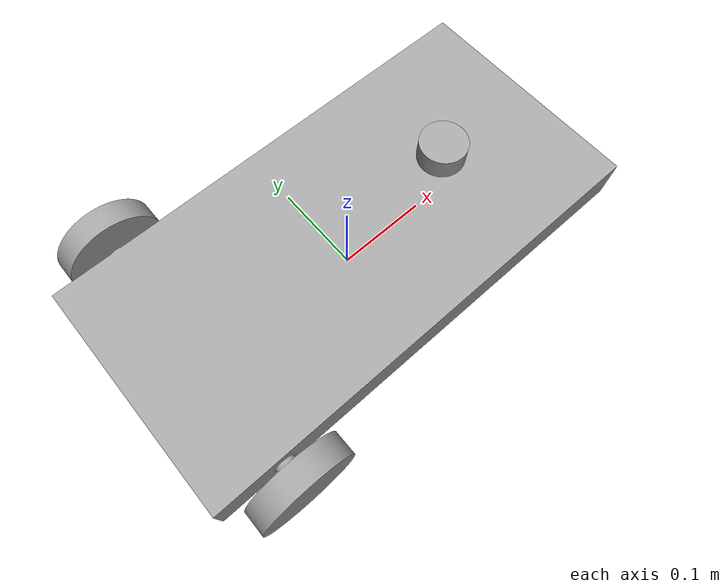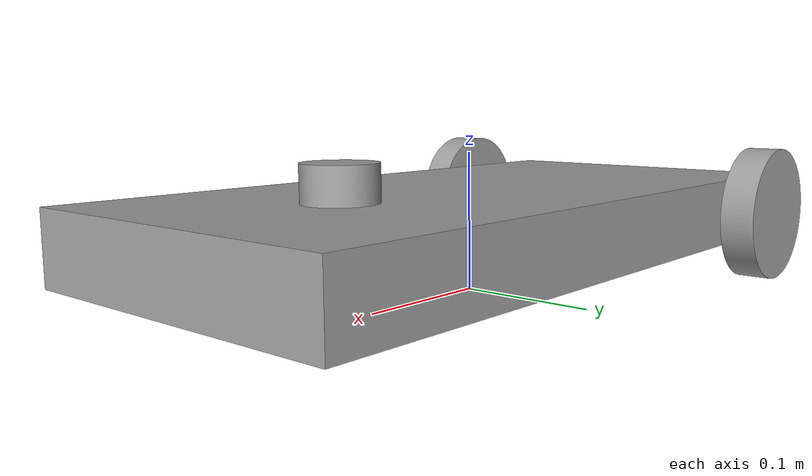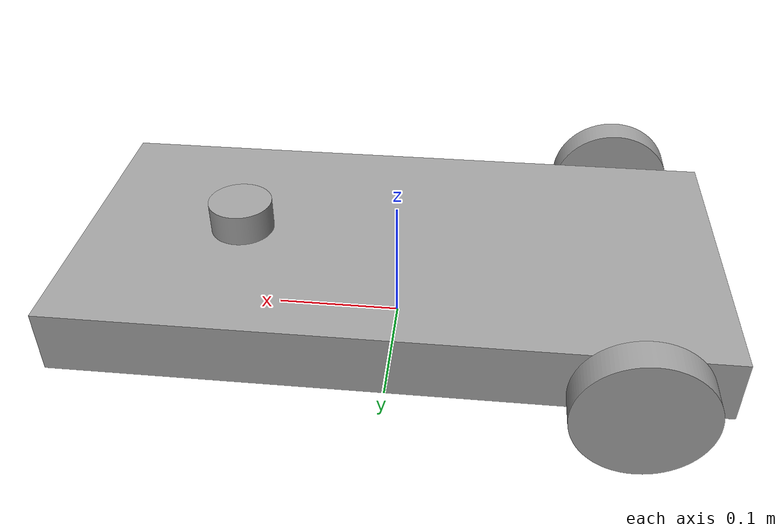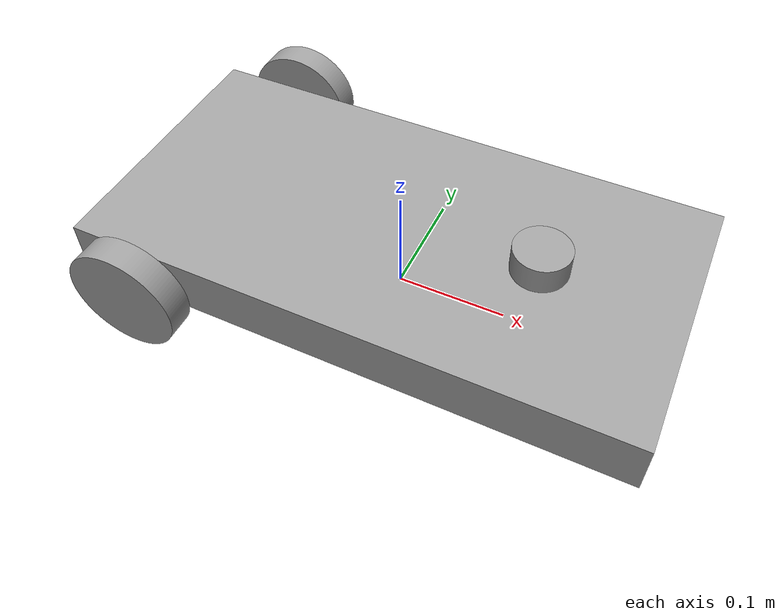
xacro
<?xml version="1.0" ?>
<robot name="assembly" xmlns:xacro="http://www.ros.org/wiki/xacro">

<xacro:include filename="$(find assembly_description)/urdf/materials.xacro" />
<xacro:include filename="$(find assembly_description)/urdf/assembly.trans" />
<xacro:include filename="$(find assembly_description)/urdf/assembly.gazebo" />
<link name="base_link">
  <inertial>
    <origin xyz="-7.189661161242765e-05 -2.323440234690456e-17 0.049960916667525355" rpy="0 0 0"/>
    <mass value="49.16525625971119"/>
    <inertia ixx="0.266663" iyy="1.034564" izz="1.280639" ixy="-0.0" iyz="-0.0" ixz="0.000192"/>
  </inertial>
  <visual>
    <origin xyz="0 0 0" rpy="0 0 0"/>
    <geometry>
      <mesh filename="package://assembly_description/meshes/base_link.stl" scale="0.001 0.001 0.001"/>
    </geometry>
    <material name="steel_satin"/>
  </visual>
  <collision>
    <origin xyz="0 0 0" rpy="0 0 0"/>
    <geometry>
      <mesh filename="package://assembly_description/meshes/base_link.stl" scale="0.001 0.001 0.001"/>
    </geometry>
  </collision>
</link>

<link name="lidar_1">
  <inertial>
    <origin xyz="0.125 -3.766326597689924e-18 0.012499999999999997" rpy="0 0 0"/>
    <mass value="0.385335973916873"/>
    <inertia ixx="8e-05" iyy="8e-05" izz="0.00012" ixy="-0.0" iyz="0.0" ixz="0.0"/>
  </inertial>
  <visual>
    <origin xyz="-0.0 -0.0 -0.075" rpy="0 0 0"/>
    <geometry>
      <mesh filename="package://assembly_description/meshes/lidar_1.stl" scale="0.001 0.001 0.001"/>
    </geometry>
    <material name="steel_satin"/>
  </visual>
  <collision>
    <origin xyz="-0.0 -0.0 -0.075" rpy="0 0 0"/>
    <geometry>
      <mesh filename="package://assembly_description/meshes/lidar_1.stl" scale="0.001 0.001 0.001"/>
    </geometry>
  </collision>
</link>

<link name="right_wheel_1">
  <inertial>
    <origin xyz="-5.551115123125783e-17 -0.0124999999999999 -4.85722573273506e-17" rpy="0 0 0"/>
    <mass value="1.541343895667492"/>
    <inertia ixx="0.001044" iyy="0.001927" izz="0.001044" ixy="0.0" iyz="0.0" ixz="0.0"/>
  </inertial>
  <visual>
    <origin xyz="0.18 0.135 -0.05" rpy="0 0 0"/>
    <geometry>
      <mesh filename="package://assembly_description/meshes/right_wheel_1.stl" scale="0.001 0.001 0.001"/>
    </geometry>
    <material name="steel_satin"/>
  </visual>
  <collision>
    <origin xyz="0.18 0.135 -0.05" rpy="0 0 0"/>
    <geometry>
      <mesh filename="package://assembly_description/meshes/right_wheel_1.stl" scale="0.001 0.001 0.001"/>
    </geometry>
  </collision>
</link>

<link name="left_wheel_1">
  <inertial>
    <origin xyz="0.0 0.012499999999999983 6.938893903907228e-18" rpy="0 0 0"/>
    <mass value="1.541343895667492"/>
    <inertia ixx="0.001044" iyy="0.001927" izz="0.001044" ixy="0.0" iyz="-0.0" ixz="0.0"/>
  </inertial>
  <visual>
    <origin xyz="0.18 -0.135 -0.05" rpy="0 0 0"/>
    <geometry>
      <mesh filename="package://assembly_description/meshes/left_wheel_1.stl" scale="0.001 0.001 0.001"/>
    </geometry>
    <material name="steel_satin"/>
  </visual>
  <collision>
    <origin xyz="0.18 -0.135 -0.05" rpy="0 0 0"/>
    <geometry>
      <mesh filename="package://assembly_description/meshes/left_wheel_1.stl" scale="0.001 0.001 0.001"/>
    </geometry>
  </collision>
</link>

<joint name="Rigid 3" type="fixed">
  <origin xyz="0.0 0.0 0.075" rpy="0 0 0"/>
  <parent link="base_link"/>
  <child link="lidar_1"/>
</joint>

<joint name="right" type="continuous">
  <origin xyz="-0.18 -0.135 0.05" rpy="0 0 0"/>
  <parent link="base_link"/>
  <child link="right_wheel_1"/>
  <axis xyz="0.0 -1.0 0.0"/>
</joint>

<joint name="left" type="continuous">
  <origin xyz="-0.18 0.135 0.05" rpy="0 0 0"/>
  <parent link="base_link"/>
  <child link="left_wheel_1"/>
  <axis xyz="0.0 1.0 0.0"/>
</joint>

</robot>

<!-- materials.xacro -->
<robot name="assembly" xmlns:xacro="http://www.ros.org/wiki/xacro" >

<material name="silver_default">
  <color rgba="0.700 0.700 0.700 1.000"/>
</material>
<material name="steel_satin">
  <color rgba="0.6274509803921569 0.6274509803921569 0.6274509803921569 1.0"/>
</material>

</robot>

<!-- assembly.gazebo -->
<robot name="assembly" xmlns:xacro="http://www.ros.org/wiki/xacro" >

<xacro:property name="body_color" value="Gazebo/Silver" />

<gazebo>
  <plugin name="control" filename="libgazebo_ros_control.so"/>
</gazebo>
<gazebo reference="base_link">
  <material>${body_color}</material>
  <mu1>0.2</mu1>
  <mu2>0.2</mu2>
  <selfCollide>true</selfCollide>
  <gravity>true</gravity>
</gazebo>

<gazebo reference="lidar_1">
  <material>${body_color}</material>
  <mu1>0.2</mu1>
  <mu2>0.2</mu2>
  <selfCollide>true</selfCollide>
</gazebo>

<gazebo reference="right_wheel_1">
  <material>${body_color}</material>
  <mu1>0.2</mu1>
  <mu2>0.2</mu2>
  <selfCollide>true</selfCollide>
</gazebo>

<gazebo reference="left_wheel_1">
  <material>${body_color}</material>
  <mu1>0.2</mu1>
  <mu2>0.2</mu2>
  <selfCollide>true</selfCollide>
</gazebo>

</robot>
